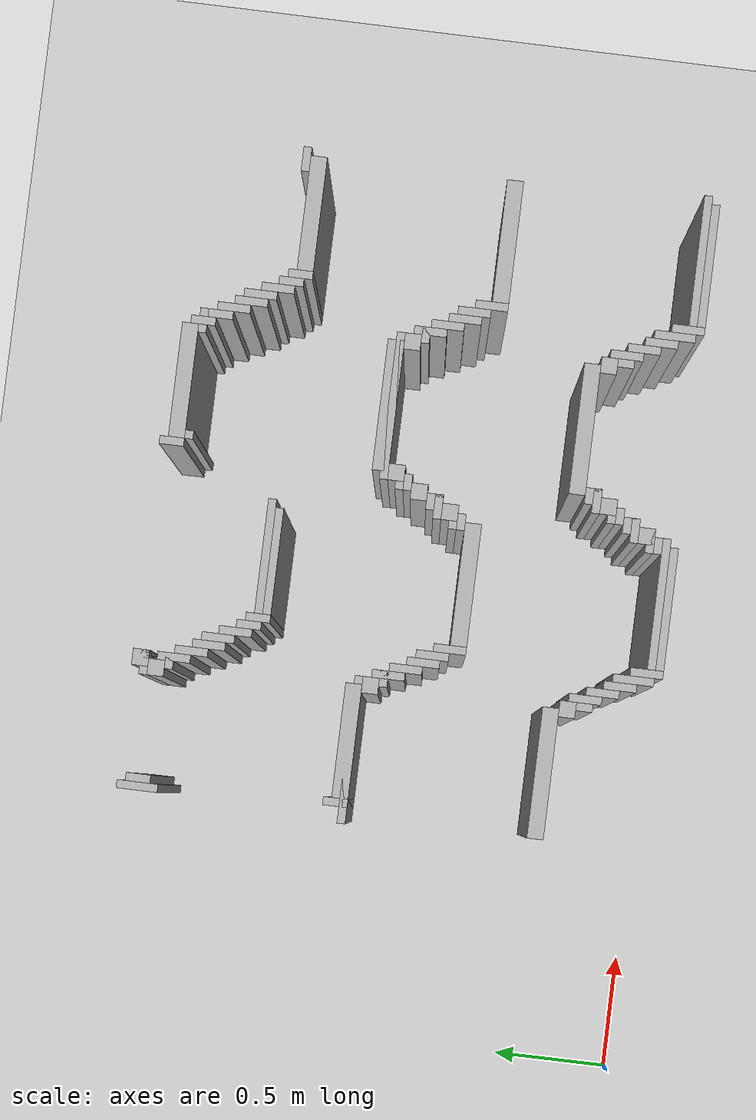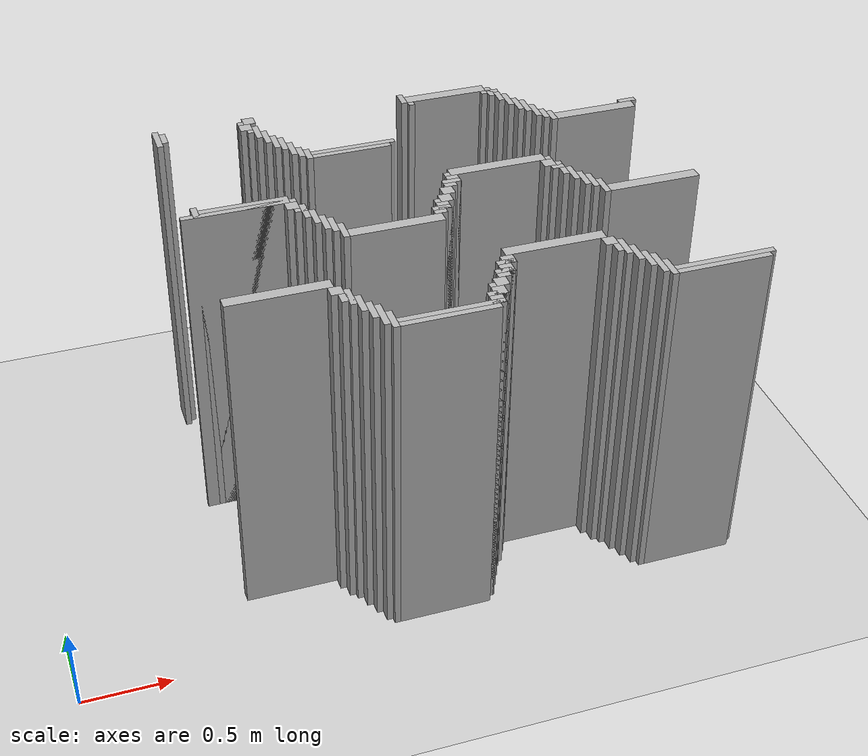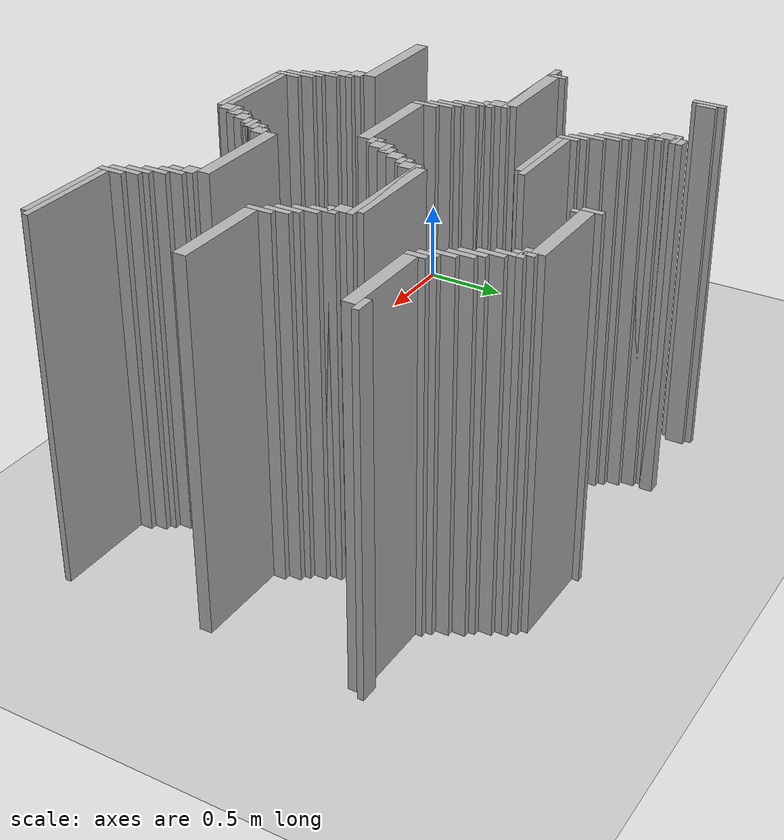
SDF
<sdf version="1.6">
 <world name="slam_world">
  <model name="ground_plane">
   <static>true</static>
   <link name="link">
    <collision name="collision">
     <geometry><plane><normal>0 0 1</normal><size>100 100</size></plane></geometry>
    </collision>
    <visual name="visual">
     <geometry><plane><normal>0 0 1</normal><size>100 100</size></plane></geometry>
     <material>
      <ambient>0.8 0.8 0.8 1</ambient>
      <diffuse>0.8 0.8 0.8 1</diffuse>
      <specular>0.8 0.8 0.8 1</specular>
     </material>
    </visual>
   </link>
  </model>
  <model name="wall_5118">
   <static>true</static>
   <pose>1.0266821345707655 2.1751740139211138 1.0 0 0 0</pose>
   <link name="link">
    <collision name="collision">
     <geometry><box><size>0.03480278422273782 0.17401392111368907 2.0</size></box></geometry>
    </collision>
    <visual name="visual">
     <geometry><box><size>0.03480278422273782 0.17401392111368907 2.0</size></box></geometry>
     <material><ambient>0.5 0.5 0.5 1</ambient><diffuse>0.7 0.7 0.7 1</diffuse></material>
    </visual>
   </link>
  </model>
  <model name="wall_5119">
   <static>true</static>
   <pose>1.5661252900232019 2.2273781902552203 1.0 0 0 0</pose>
   <link name="link">
    <collision name="collision">
     <geometry><box><size>0.06960556844547564 0.06960556844547564 2.0</size></box></geometry>
    </collision>
    <visual name="visual">
     <geometry><box><size>0.06960556844547564 0.06960556844547564 2.0</size></box></geometry>
     <material><ambient>0.5 0.5 0.5 1</ambient><diffuse>0.7 0.7 0.7 1</diffuse></material>
    </visual>
   </link>
  </model>
  <model name="wall_5120">
   <static>true</static>
   <pose>2.488399071925754 2.2099767981438516 1.0 0 0 0</pose>
   <link name="link">
    <collision name="collision">
     <geometry><box><size>0.03480278422273782 0.10440835266821345 2.0</size></box></geometry>
    </collision>
    <visual name="visual">
     <geometry><box><size>0.03480278422273782 0.10440835266821345 2.0</size></box></geometry>
     <material><ambient>0.5 0.5 0.5 1</ambient><diffuse>0.7 0.7 0.7 1</diffuse></material>
    </visual>
   </link>
  </model>
  <model name="wall_5134">
   <static>true</static>
   <pose>1.0614849187935034 2.1751740139211138 1.0 0 0 0</pose>
   <link name="link">
    <collision name="collision">
     <geometry><box><size>0.03480278422273782 0.10440835266821345 2.0</size></box></geometry>
    </collision>
    <visual name="visual">
     <geometry><box><size>0.03480278422273782 0.10440835266821345 2.0</size></box></geometry>
     <material><ambient>0.5 0.5 0.5 1</ambient><diffuse>0.7 0.7 0.7 1</diffuse></material>
    </visual>
   </link>
  </model>
  <model name="wall_5135">
   <static>true</static>
   <pose>1.548723897911833 2.2099767981438516 1.0 0 0 0</pose>
   <link name="link">
    <collision name="collision">
     <geometry><box><size>0.10440835266821345 0.03480278422273782 2.0</size></box></geometry>
    </collision>
    <visual name="visual">
     <geometry><box><size>0.10440835266821345 0.03480278422273782 2.0</size></box></geometry>
     <material><ambient>0.5 0.5 0.5 1</ambient><diffuse>0.7 0.7 0.7 1</diffuse></material>
    </visual>
   </link>
  </model>
  <model name="wall_5136">
   <static>true</static>
   <pose>2.7494199535962878 2.1925754060324825 1.0 0 0 0</pose>
   <link name="link">
    <collision name="collision">
     <geometry><box><size>0.4872389791183295 0.06960556844547564 2.0</size></box></geometry>
    </collision>
    <visual name="visual">
     <geometry><box><size>0.4872389791183295 0.06960556844547564 2.0</size></box></geometry>
     <material><ambient>0.5 0.5 0.5 1</ambient><diffuse>0.7 0.7 0.7 1</diffuse></material>
    </visual>
   </link>
  </model>
  <model name="wall_5149">
   <static>true</static>
   <pose>1.531322505800464 2.1577726218097446 1.0 0 0 0</pose>
   <link name="link">
    <collision name="collision">
     <geometry><box><size>0.06960556844547564 0.06960556844547564 2.0</size></box></geometry>
    </collision>
    <visual name="visual">
     <geometry><box><size>0.06960556844547564 0.06960556844547564 2.0</size></box></geometry>
     <material><ambient>0.5 0.5 0.5 1</ambient><diffuse>0.7 0.7 0.7 1</diffuse></material>
    </visual>
   </link>
  </model>
  <model name="wall_5150">
   <static>true</static>
   <pose>3.010440835266821 2.140371229698376 1.0 0 0 0</pose>
   <link name="link">
    <collision name="collision">
     <geometry><box><size>0.03480278422273782 0.10440835266821345 2.0</size></box></geometry>
    </collision>
    <visual name="visual">
     <geometry><box><size>0.03480278422273782 0.10440835266821345 2.0</size></box></geometry>
     <material><ambient>0.5 0.5 0.5 1</ambient><diffuse>0.7 0.7 0.7 1</diffuse></material>
    </visual>
   </link>
  </model>
  <model name="wall_5161">
   <static>true</static>
   <pose>1.5835266821345706 2.088167053364269 1.0 0 0 0</pose>
   <link name="link">
    <collision name="collision">
     <geometry><box><size>0.03480278422273782 0.13921113689095127 2.0</size></box></geometry>
    </collision>
    <visual name="visual">
     <geometry><box><size>0.03480278422273782 0.13921113689095127 2.0</size></box></geometry>
     <material><ambient>0.5 0.5 0.5 1</ambient><diffuse>0.7 0.7 0.7 1</diffuse></material>
    </visual>
   </link>
  </model>
  <model name="wall_5162">
   <static>true</static>
   <pose>2.523201856148492 2.140371229698376 1.0 0 0 0</pose>
   <link name="link">
    <collision name="collision">
     <geometry><box><size>0.03480278422273782 0.03480278422273782 2.0</size></box></geometry>
    </collision>
    <visual name="visual">
     <geometry><box><size>0.03480278422273782 0.03480278422273782 2.0</size></box></geometry>
     <material><ambient>0.5 0.5 0.5 1</ambient><diffuse>0.7 0.7 0.7 1</diffuse></material>
    </visual>
   </link>
  </model>
  <model name="wall_5163">
   <static>true</static>
   <pose>3.010440835266821 2.140371229698376 1.0 0 0 0</pose>
   <link name="link">
    <collision name="collision">
     <geometry><box><size>0.10440835266821345 0.03480278422273782 2.0</size></box></geometry>
    </collision>
    <visual name="visual">
     <geometry><box><size>0.10440835266821345 0.03480278422273782 2.0</size></box></geometry>
     <material><ambient>0.5 0.5 0.5 1</ambient><diffuse>0.7 0.7 0.7 1</diffuse></material>
    </visual>
   </link>
  </model>
  <model name="wall_5180">
   <static>true</static>
   <pose>1.5661252900232019 2.105568445475638 1.0 0 0 0</pose>
   <link name="link">
    <collision name="collision">
     <geometry><box><size>0.06960556844547564 0.03480278422273782 2.0</size></box></geometry>
    </collision>
    <visual name="visual">
     <geometry><box><size>0.06960556844547564 0.03480278422273782 2.0</size></box></geometry>
     <material><ambient>0.5 0.5 0.5 1</ambient><diffuse>0.7 0.7 0.7 1</diffuse></material>
    </visual>
   </link>
  </model>
  <model name="wall_5181">
   <static>true</static>
   <pose>3.045243619489559 2.0707656612529 1.0 0 0 0</pose>
   <link name="link">
    <collision name="collision">
     <geometry><box><size>0.03480278422273782 0.10440835266821345 2.0</size></box></geometry>
    </collision>
    <visual name="visual">
     <geometry><box><size>0.03480278422273782 0.10440835266821345 2.0</size></box></geometry>
     <material><ambient>0.5 0.5 0.5 1</ambient><diffuse>0.7 0.7 0.7 1</diffuse></material>
    </visual>
   </link>
  </model>
  <model name="wall_5195">
   <static>true</static>
   <pose>1.6183294663573085 2.0185614849187936 1.0 0 0 0</pose>
   <link name="link">
    <collision name="collision">
     <geometry><box><size>0.03480278422273782 0.13921113689095127 2.0</size></box></geometry>
    </collision>
    <visual name="visual">
     <geometry><box><size>0.03480278422273782 0.13921113689095127 2.0</size></box></geometry>
     <material><ambient>0.5 0.5 0.5 1</ambient><diffuse>0.7 0.7 0.7 1</diffuse></material>
    </visual>
   </link>
  </model>
  <model name="wall_5196">
   <static>true</static>
   <pose>3.0800464037122968 2.0185614849187936 1.0 0 0 0</pose>
   <link name="link">
    <collision name="collision">
     <geometry><box><size>0.03480278422273782 0.13921113689095127 2.0</size></box></geometry>
    </collision>
    <visual name="visual">
     <geometry><box><size>0.03480278422273782 0.13921113689095127 2.0</size></box></geometry>
     <material><ambient>0.5 0.5 0.5 1</ambient><diffuse>0.7 0.7 0.7 1</diffuse></material>
    </visual>
   </link>
  </model>
  <model name="wall_5210">
   <static>true</static>
   <pose>1.6531322505800463 1.948955916473318 1.0 0 0 0</pose>
   <link name="link">
    <collision name="collision">
     <geometry><box><size>0.03480278422273782 0.13921113689095127 2.0</size></box></geometry>
    </collision>
    <visual name="visual">
     <geometry><box><size>0.03480278422273782 0.13921113689095127 2.0</size></box></geometry>
     <material><ambient>0.5 0.5 0.5 1</ambient><diffuse>0.7 0.7 0.7 1</diffuse></material>
    </visual>
   </link>
  </model>
  <model name="wall_5211">
   <static>true</static>
   <pose>3.1148491879350346 1.948955916473318 1.0 0 0 0</pose>
   <link name="link">
    <collision name="collision">
     <geometry><box><size>0.03480278422273782 0.13921113689095127 2.0</size></box></geometry>
    </collision>
    <visual name="visual">
     <geometry><box><size>0.03480278422273782 0.13921113689095127 2.0</size></box></geometry>
     <material><ambient>0.5 0.5 0.5 1</ambient><diffuse>0.7 0.7 0.7 1</diffuse></material>
    </visual>
   </link>
  </model>
  <model name="wall_5225">
   <static>true</static>
   <pose>1.6879350348027842 1.91415313225058 1.0 0 0 0</pose>
   <link name="link">
    <collision name="collision">
     <geometry><box><size>0.03480278422273782 0.13921113689095127 2.0</size></box></geometry>
    </collision>
    <visual name="visual">
     <geometry><box><size>0.03480278422273782 0.13921113689095127 2.0</size></box></geometry>
     <material><ambient>0.5 0.5 0.5 1</ambient><diffuse>0.7 0.7 0.7 1</diffuse></material>
    </visual>
   </link>
  </model>
  <model name="wall_5226">
   <static>true</static>
   <pose>3.1496519721577725 1.91415313225058 1.0 0 0 0</pose>
   <link name="link">
    <collision name="collision">
     <geometry><box><size>0.03480278422273782 0.13921113689095127 2.0</size></box></geometry>
    </collision>
    <visual name="visual">
     <geometry><box><size>0.03480278422273782 0.13921113689095127 2.0</size></box></geometry>
     <material><ambient>0.5 0.5 0.5 1</ambient><diffuse>0.7 0.7 0.7 1</diffuse></material>
    </visual>
   </link>
  </model>
  <model name="wall_5250">
   <static>true</static>
   <pose>1.722737819025522 1.8445475638051043 1.0 0 0 0</pose>
   <link name="link">
    <collision name="collision">
     <geometry><box><size>0.03480278422273782 0.13921113689095127 2.0</size></box></geometry>
    </collision>
    <visual name="visual">
     <geometry><box><size>0.03480278422273782 0.13921113689095127 2.0</size></box></geometry>
     <material><ambient>0.5 0.5 0.5 1</ambient><diffuse>0.7 0.7 0.7 1</diffuse></material>
    </visual>
   </link>
  </model>
  <model name="wall_5251">
   <static>true</static>
   <pose>3.1844547563805103 1.8445475638051043 1.0 0 0 0</pose>
   <link name="link">
    <collision name="collision">
     <geometry><box><size>0.03480278422273782 0.13921113689095127 2.0</size></box></geometry>
    </collision>
    <visual name="visual">
     <geometry><box><size>0.03480278422273782 0.13921113689095127 2.0</size></box></geometry>
     <material><ambient>0.5 0.5 0.5 1</ambient><diffuse>0.7 0.7 0.7 1</diffuse></material>
    </visual>
   </link>
  </model>
  <model name="wall_5274">
   <static>true</static>
   <pose>1.75754060324826 1.7923433874709975 1.0 0 0 0</pose>
   <link name="link">
    <collision name="collision">
     <geometry><box><size>0.03480278422273782 0.10440835266821345 2.0</size></box></geometry>
    </collision>
    <visual name="visual">
     <geometry><box><size>0.03480278422273782 0.10440835266821345 2.0</size></box></geometry>
     <material><ambient>0.5 0.5 0.5 1</ambient><diffuse>0.7 0.7 0.7 1</diffuse></material>
    </visual>
   </link>
  </model>
  <model name="wall_5275">
   <static>true</static>
   <pose>3.219257540603248 1.7923433874709975 1.0 0 0 0</pose>
   <link name="link">
    <collision name="collision">
     <geometry><box><size>0.03480278422273782 0.10440835266821345 2.0</size></box></geometry>
    </collision>
    <visual name="visual">
     <geometry><box><size>0.03480278422273782 0.10440835266821345 2.0</size></box></geometry>
     <material><ambient>0.5 0.5 0.5 1</ambient><diffuse>0.7 0.7 0.7 1</diffuse></material>
    </visual>
   </link>
  </model>
  <model name="wall_5289">
   <static>true</static>
   <pose>1.7923433874709975 1.75754060324826 1.0 0 0 0</pose>
   <link name="link">
    <collision name="collision">
     <geometry><box><size>0.03480278422273782 0.10440835266821345 2.0</size></box></geometry>
    </collision>
    <visual name="visual">
     <geometry><box><size>0.03480278422273782 0.10440835266821345 2.0</size></box></geometry>
     <material><ambient>0.5 0.5 0.5 1</ambient><diffuse>0.7 0.7 0.7 1</diffuse></material>
    </visual>
   </link>
  </model>
  <model name="wall_5290">
   <static>true</static>
   <pose>3.254060324825986 1.75754060324826 1.0 0 0 0</pose>
   <link name="link">
    <collision name="collision">
     <geometry><box><size>0.03480278422273782 0.10440835266821345 2.0</size></box></geometry>
    </collision>
    <visual name="visual">
     <geometry><box><size>0.03480278422273782 0.10440835266821345 2.0</size></box></geometry>
     <material><ambient>0.5 0.5 0.5 1</ambient><diffuse>0.7 0.7 0.7 1</diffuse></material>
    </visual>
   </link>
  </model>
  <model name="wall_5291">
   <static>true</static>
   <pose>3.741299303944315 1.7923433874709975 1.0 0 0 0</pose>
   <link name="link">
    <collision name="collision">
     <geometry><box><size>0.10440835266821345 0.03480278422273782 2.0</size></box></geometry>
    </collision>
    <visual name="visual">
     <geometry><box><size>0.10440835266821345 0.03480278422273782 2.0</size></box></geometry>
     <material><ambient>0.5 0.5 0.5 1</ambient><diffuse>0.7 0.7 0.7 1</diffuse></material>
    </visual>
   </link>
  </model>
  <model name="wall_5303">
   <static>true</static>
   <pose>2.053364269141531 1.75754060324826 1.0 0 0 0</pose>
   <link name="link">
    <collision name="collision">
     <geometry><box><size>0.4872389791183295 0.03480278422273782 2.0</size></box></geometry>
    </collision>
    <visual name="visual">
     <geometry><box><size>0.4872389791183295 0.03480278422273782 2.0</size></box></geometry>
     <material><ambient>0.5 0.5 0.5 1</ambient><diffuse>0.7 0.7 0.7 1</diffuse></material>
    </visual>
   </link>
  </model>
  <model name="wall_5304">
   <static>true</static>
   <pose>3.51508120649652 1.740139211136891 1.0 0 0 0</pose>
   <link name="link">
    <collision name="collision">
     <geometry><box><size>0.4872389791183295 0.06960556844547564 2.0</size></box></geometry>
    </collision>
    <visual name="visual">
     <geometry><box><size>0.4872389791183295 0.06960556844547564 2.0</size></box></geometry>
     <material><ambient>0.5 0.5 0.5 1</ambient><diffuse>0.7 0.7 0.7 1</diffuse></material>
    </visual>
   </link>
  </model>
  <model name="wall_5316">
   <static>true</static>
   <pose>2.0359628770301623 1.722737819025522 1.0 0 0 0</pose>
   <link name="link">
    <collision name="collision">
     <geometry><box><size>0.4524361948955916 0.03480278422273782 2.0</size></box></geometry>
    </collision>
    <visual name="visual">
     <geometry><box><size>0.4524361948955916 0.03480278422273782 2.0</size></box></geometry>
     <material><ambient>0.5 0.5 0.5 1</ambient><diffuse>0.7 0.7 0.7 1</diffuse></material>
    </visual>
   </link>
  </model>
  <model name="wall_5421">
   <static>true</static>
   <pose>1.0614849187935034 1.339907192575406 1.0 0 0 0</pose>
   <link name="link">
    <collision name="collision">
     <geometry><box><size>0.03480278422273782 0.10440835266821345 2.0</size></box></geometry>
    </collision>
    <visual name="visual">
     <geometry><box><size>0.03480278422273782 0.10440835266821345 2.0</size></box></geometry>
     <material><ambient>0.5 0.5 0.5 1</ambient><diffuse>0.7 0.7 0.7 1</diffuse></material>
    </visual>
   </link>
  </model>
  <model name="wall_5432">
   <static>true</static>
   <pose>1.322505800464037 1.322505800464037 1.0 0 0 0</pose>
   <link name="link">
    <collision name="collision">
     <geometry><box><size>0.4872389791183295 0.06960556844547564 2.0</size></box></geometry>
    </collision>
    <visual name="visual">
     <geometry><box><size>0.4872389791183295 0.06960556844547564 2.0</size></box></geometry>
     <material><ambient>0.5 0.5 0.5 1</ambient><diffuse>0.7 0.7 0.7 1</diffuse></material>
    </visual>
   </link>
  </model>
  <model name="wall_5433">
   <static>true</static>
   <pose>2.7494199535962878 1.322505800464037 1.0 0 0 0</pose>
   <link name="link">
    <collision name="collision">
     <geometry><box><size>0.5568445475638051 0.06960556844547564 2.0</size></box></geometry>
    </collision>
    <visual name="visual">
     <geometry><box><size>0.5568445475638051 0.06960556844547564 2.0</size></box></geometry>
     <material><ambient>0.5 0.5 0.5 1</ambient><diffuse>0.7 0.7 0.7 1</diffuse></material>
    </visual>
   </link>
  </model>
  <model name="wall_5444">
   <static>true</static>
   <pose>1.2877030162412992 1.3051044083526682 1.0 0 0 0</pose>
   <link name="link">
    <collision name="collision">
     <geometry><box><size>0.6264501160092807 0.03480278422273782 2.0</size></box></geometry>
    </collision>
    <visual name="visual">
     <geometry><box><size>0.6264501160092807 0.03480278422273782 2.0</size></box></geometry>
     <material><ambient>0.5 0.5 0.5 1</ambient><diffuse>0.7 0.7 0.7 1</diffuse></material>
    </visual>
   </link>
  </model>
  <model name="wall_5445">
   <static>true</static>
   <pose>2.7494199535962878 1.3051044083526682 1.0 0 0 0</pose>
   <link name="link">
    <collision name="collision">
     <geometry><box><size>0.6264501160092807 0.03480278422273782 2.0</size></box></geometry>
    </collision>
    <visual name="visual">
     <geometry><box><size>0.6264501160092807 0.03480278422273782 2.0</size></box></geometry>
     <material><ambient>0.5 0.5 0.5 1</ambient><diffuse>0.7 0.7 0.7 1</diffuse></material>
    </visual>
   </link>
  </model>
  <model name="wall_5457">
   <static>true</static>
   <pose>1.5661252900232019 1.2529002320185614 1.0 0 0 0</pose>
   <link name="link">
    <collision name="collision">
     <geometry><box><size>0.06960556844547564 0.06960556844547564 2.0</size></box></geometry>
    </collision>
    <visual name="visual">
     <geometry><box><size>0.06960556844547564 0.06960556844547564 2.0</size></box></geometry>
     <material><ambient>0.5 0.5 0.5 1</ambient><diffuse>0.7 0.7 0.7 1</diffuse></material>
    </visual>
   </link>
  </model>
  <model name="wall_5458">
   <static>true</static>
   <pose>2.470997679814385 1.2529002320185614 1.0 0 0 0</pose>
   <link name="link">
    <collision name="collision">
     <geometry><box><size>0.06960556844547564 0.06960556844547564 2.0</size></box></geometry>
    </collision>
    <visual name="visual">
     <geometry><box><size>0.06960556844547564 0.06960556844547564 2.0</size></box></geometry>
     <material><ambient>0.5 0.5 0.5 1</ambient><diffuse>0.7 0.7 0.7 1</diffuse></material>
    </visual>
   </link>
  </model>
  <model name="wall_5459">
   <static>true</static>
   <pose>3.02784222737819 1.2529002320185614 1.0 0 0 0</pose>
   <link name="link">
    <collision name="collision">
     <geometry><box><size>0.06960556844547564 0.06960556844547564 2.0</size></box></geometry>
    </collision>
    <visual name="visual">
     <geometry><box><size>0.06960556844547564 0.06960556844547564 2.0</size></box></geometry>
     <material><ambient>0.5 0.5 0.5 1</ambient><diffuse>0.7 0.7 0.7 1</diffuse></material>
    </visual>
   </link>
  </model>
  <model name="wall_5472">
   <static>true</static>
   <pose>1.6183294663573085 1.1832946635730859 1.0 0 0 0</pose>
   <link name="link">
    <collision name="collision">
     <geometry><box><size>0.03480278422273782 0.13921113689095127 2.0</size></box></geometry>
    </collision>
    <visual name="visual">
     <geometry><box><size>0.03480278422273782 0.13921113689095127 2.0</size></box></geometry>
     <material><ambient>0.5 0.5 0.5 1</ambient><diffuse>0.7 0.7 0.7 1</diffuse></material>
    </visual>
   </link>
  </model>
  <model name="wall_5473">
   <static>true</static>
   <pose>2.453596287703016 1.2354988399071924 1.0 0 0 0</pose>
   <link name="link">
    <collision name="collision">
     <geometry><box><size>0.10440835266821345 0.03480278422273782 2.0</size></box></geometry>
    </collision>
    <visual name="visual">
     <geometry><box><size>0.10440835266821345 0.03480278422273782 2.0</size></box></geometry>
     <material><ambient>0.5 0.5 0.5 1</ambient><diffuse>0.7 0.7 0.7 1</diffuse></material>
    </visual>
   </link>
  </model>
  <model name="wall_5474">
   <static>true</static>
   <pose>3.0800464037122968 1.1832946635730859 1.0 0 0 0</pose>
   <link name="link">
    <collision name="collision">
     <geometry><box><size>0.03480278422273782 0.13921113689095127 2.0</size></box></geometry>
    </collision>
    <visual name="visual">
     <geometry><box><size>0.03480278422273782 0.13921113689095127 2.0</size></box></geometry>
     <material><ambient>0.5 0.5 0.5 1</ambient><diffuse>0.7 0.7 0.7 1</diffuse></material>
    </visual>
   </link>
  </model>
  <model name="wall_5486">
   <static>true</static>
   <pose>1.6009280742459395 1.2006960556844548 1.0 0 0 0</pose>
   <link name="link">
    <collision name="collision">
     <geometry><box><size>0.06960556844547564 0.03480278422273782 2.0</size></box></geometry>
    </collision>
    <visual name="visual">
     <geometry><box><size>0.06960556844547564 0.03480278422273782 2.0</size></box></geometry>
     <material><ambient>0.5 0.5 0.5 1</ambient><diffuse>0.7 0.7 0.7 1</diffuse></material>
    </visual>
   </link>
  </model>
  <model name="wall_5487">
   <static>true</static>
   <pose>2.436194895591647 1.2006960556844548 1.0 0 0 0</pose>
   <link name="link">
    <collision name="collision">
     <geometry><box><size>0.06960556844547564 0.03480278422273782 2.0</size></box></geometry>
    </collision>
    <visual name="visual">
     <geometry><box><size>0.06960556844547564 0.03480278422273782 2.0</size></box></geometry>
     <material><ambient>0.5 0.5 0.5 1</ambient><diffuse>0.7 0.7 0.7 1</diffuse></material>
    </visual>
   </link>
  </model>
  <model name="wall_5488">
   <static>true</static>
   <pose>3.062645011600928 1.2006960556844548 1.0 0 0 0</pose>
   <link name="link">
    <collision name="collision">
     <geometry><box><size>0.06960556844547564 0.03480278422273782 2.0</size></box></geometry>
    </collision>
    <visual name="visual">
     <geometry><box><size>0.06960556844547564 0.03480278422273782 2.0</size></box></geometry>
     <material><ambient>0.5 0.5 0.5 1</ambient><diffuse>0.7 0.7 0.7 1</diffuse></material>
    </visual>
   </link>
  </model>
  <model name="wall_5499">
   <static>true</static>
   <pose>1.6531322505800463 1.1136890951276102 1.0 0 0 0</pose>
   <link name="link">
    <collision name="collision">
     <geometry><box><size>0.03480278422273782 0.13921113689095127 2.0</size></box></geometry>
    </collision>
    <visual name="visual">
     <geometry><box><size>0.03480278422273782 0.13921113689095127 2.0</size></box></geometry>
     <material><ambient>0.5 0.5 0.5 1</ambient><diffuse>0.7 0.7 0.7 1</diffuse></material>
    </visual>
   </link>
  </model>
  <model name="wall_5500">
   <static>true</static>
   <pose>2.4013921113689096 1.148491879350348 1.0 0 0 0</pose>
   <link name="link">
    <collision name="collision">
     <geometry><box><size>0.06960556844547564 0.06960556844547564 2.0</size></box></geometry>
    </collision>
    <visual name="visual">
     <geometry><box><size>0.06960556844547564 0.06960556844547564 2.0</size></box></geometry>
     <material><ambient>0.5 0.5 0.5 1</ambient><diffuse>0.7 0.7 0.7 1</diffuse></material>
    </visual>
   </link>
  </model>
  <model name="wall_5501">
   <static>true</static>
   <pose>3.1148491879350346 1.1136890951276102 1.0 0 0 0</pose>
   <link name="link">
    <collision name="collision">
     <geometry><box><size>0.03480278422273782 0.13921113689095127 2.0</size></box></geometry>
    </collision>
    <visual name="visual">
     <geometry><box><size>0.03480278422273782 0.13921113689095127 2.0</size></box></geometry>
     <material><ambient>0.5 0.5 0.5 1</ambient><diffuse>0.7 0.7 0.7 1</diffuse></material>
    </visual>
   </link>
  </model>
  <model name="wall_5514">
   <static>true</static>
   <pose>1.6879350348027842 1.0440835266821344 1.0 0 0 0</pose>
   <link name="link">
    <collision name="collision">
     <geometry><box><size>0.03480278422273782 0.13921113689095127 2.0</size></box></geometry>
    </collision>
    <visual name="visual">
     <geometry><box><size>0.03480278422273782 0.13921113689095127 2.0</size></box></geometry>
     <material><ambient>0.5 0.5 0.5 1</ambient><diffuse>0.7 0.7 0.7 1</diffuse></material>
    </visual>
   </link>
  </model>
  <model name="wall_5515">
   <static>true</static>
   <pose>2.3665893271461718 1.0788863109048723 1.0 0 0 0</pose>
   <link name="link">
    <collision name="collision">
     <geometry><box><size>0.06960556844547564 0.06960556844547564 2.0</size></box></geometry>
    </collision>
    <visual name="visual">
     <geometry><box><size>0.06960556844547564 0.06960556844547564 2.0</size></box></geometry>
     <material><ambient>0.5 0.5 0.5 1</ambient><diffuse>0.7 0.7 0.7 1</diffuse></material>
    </visual>
   </link>
  </model>
  <model name="wall_5516">
   <static>true</static>
   <pose>3.1496519721577725 1.0440835266821344 1.0 0 0 0</pose>
   <link name="link">
    <collision name="collision">
     <geometry><box><size>0.03480278422273782 0.13921113689095127 2.0</size></box></geometry>
    </collision>
    <visual name="visual">
     <geometry><box><size>0.03480278422273782 0.13921113689095127 2.0</size></box></geometry>
     <material><ambient>0.5 0.5 0.5 1</ambient><diffuse>0.7 0.7 0.7 1</diffuse></material>
    </visual>
   </link>
  </model>
  <model name="wall_5529">
   <static>true</static>
   <pose>1.722737819025522 1.0092807424593968 1.0 0 0 0</pose>
   <link name="link">
    <collision name="collision">
     <geometry><box><size>0.03480278422273782 0.13921113689095127 2.0</size></box></geometry>
    </collision>
    <visual name="visual">
     <geometry><box><size>0.03480278422273782 0.13921113689095127 2.0</size></box></geometry>
     <material><ambient>0.5 0.5 0.5 1</ambient><diffuse>0.7 0.7 0.7 1</diffuse></material>
    </visual>
   </link>
  </model>
  <model name="wall_5530">
   <static>true</static>
   <pose>2.3491879350348026 1.0614849187935034 1.0 0 0 0</pose>
   <link name="link">
    <collision name="collision">
     <geometry><box><size>0.10440835266821345 0.03480278422273782 2.0</size></box></geometry>
    </collision>
    <visual name="visual">
     <geometry><box><size>0.10440835266821345 0.03480278422273782 2.0</size></box></geometry>
     <material><ambient>0.5 0.5 0.5 1</ambient><diffuse>0.7 0.7 0.7 1</diffuse></material>
    </visual>
   </link>
  </model>
  <model name="wall_5531">
   <static>true</static>
   <pose>3.1844547563805103 1.0092807424593968 1.0 0 0 0</pose>
   <link name="link">
    <collision name="collision">
     <geometry><box><size>0.03480278422273782 0.13921113689095127 2.0</size></box></geometry>
    </collision>
    <visual name="visual">
     <geometry><box><size>0.03480278422273782 0.13921113689095127 2.0</size></box></geometry>
     <material><ambient>0.5 0.5 0.5 1</ambient><diffuse>0.7 0.7 0.7 1</diffuse></material>
    </visual>
   </link>
  </model>
  <model name="wall_5543">
   <static>true</static>
   <pose>2.331786542923434 1.0092807424593968 1.0 0 0 0</pose>
   <link name="link">
    <collision name="collision">
     <geometry><box><size>0.06960556844547564 0.06960556844547564 2.0</size></box></geometry>
    </collision>
    <visual name="visual">
     <geometry><box><size>0.06960556844547564 0.06960556844547564 2.0</size></box></geometry>
     <material><ambient>0.5 0.5 0.5 1</ambient><diffuse>0.7 0.7 0.7 1</diffuse></material>
    </visual>
   </link>
  </model>
  <model name="wall_5553">
   <static>true</static>
   <pose>1.75754060324826 0.9396751740139211 1.0 0 0 0</pose>
   <link name="link">
    <collision name="collision">
     <geometry><box><size>0.03480278422273782 0.13921113689095127 2.0</size></box></geometry>
    </collision>
    <visual name="visual">
     <geometry><box><size>0.03480278422273782 0.13921113689095127 2.0</size></box></geometry>
     <material><ambient>0.5 0.5 0.5 1</ambient><diffuse>0.7 0.7 0.7 1</diffuse></material>
    </visual>
   </link>
  </model>
  <model name="wall_5554">
   <static>true</static>
   <pose>2.3143851508120648 0.9918793503480278 1.0 0 0 0</pose>
   <link name="link">
    <collision name="collision">
     <geometry><box><size>0.10440835266821345 0.03480278422273782 2.0</size></box></geometry>
    </collision>
    <visual name="visual">
     <geometry><box><size>0.10440835266821345 0.03480278422273782 2.0</size></box></geometry>
     <material><ambient>0.5 0.5 0.5 1</ambient><diffuse>0.7 0.7 0.7 1</diffuse></material>
    </visual>
   </link>
  </model>
  <model name="wall_5555">
   <static>true</static>
   <pose>3.219257540603248 0.9396751740139211 1.0 0 0 0</pose>
   <link name="link">
    <collision name="collision">
     <geometry><box><size>0.03480278422273782 0.13921113689095127 2.0</size></box></geometry>
    </collision>
    <visual name="visual">
     <geometry><box><size>0.03480278422273782 0.13921113689095127 2.0</size></box></geometry>
     <material><ambient>0.5 0.5 0.5 1</ambient><diffuse>0.7 0.7 0.7 1</diffuse></material>
    </visual>
   </link>
  </model>
  <model name="wall_5567">
   <static>true</static>
   <pose>2.296983758700696 0.95707656612529 1.0 0 0 0</pose>
   <link name="link">
    <collision name="collision">
     <geometry><box><size>0.06960556844547564 0.03480278422273782 2.0</size></box></geometry>
    </collision>
    <visual name="visual">
     <geometry><box><size>0.06960556844547564 0.03480278422273782 2.0</size></box></geometry>
     <material><ambient>0.5 0.5 0.5 1</ambient><diffuse>0.7 0.7 0.7 1</diffuse></material>
    </visual>
   </link>
  </model>
  <model name="wall_5577">
   <static>true</static>
   <pose>2.0359628770301623 0.9048723897911832 1.0 0 0 0</pose>
   <link name="link">
    <collision name="collision">
     <geometry><box><size>0.5220417633410672 0.06960556844547564 2.0</size></box></geometry>
    </collision>
    <visual name="visual">
     <geometry><box><size>0.5220417633410672 0.06960556844547564 2.0</size></box></geometry>
     <material><ambient>0.5 0.5 0.5 1</ambient><diffuse>0.7 0.7 0.7 1</diffuse></material>
    </visual>
   </link>
  </model>
  <model name="wall_5578">
   <static>true</static>
   <pose>3.4976798143851506 0.9048723897911832 1.0 0 0 0</pose>
   <link name="link">
    <collision name="collision">
     <geometry><box><size>0.5220417633410672 0.06960556844547564 2.0</size></box></geometry>
    </collision>
    <visual name="visual">
     <geometry><box><size>0.5220417633410672 0.06960556844547564 2.0</size></box></geometry>
     <material><ambient>0.5 0.5 0.5 1</ambient><diffuse>0.7 0.7 0.7 1</diffuse></material>
    </visual>
   </link>
  </model>
  <model name="wall_5650">
   <static>true</static>
   <pose>1.2877030162412992 0.4872389791183295 1.0 0 0 0</pose>
   <link name="link">
    <collision name="collision">
     <geometry><box><size>0.5568445475638051 0.06960556844547564 2.0</size></box></geometry>
    </collision>
    <visual name="visual">
     <geometry><box><size>0.5568445475638051 0.06960556844547564 2.0</size></box></geometry>
     <material><ambient>0.5 0.5 0.5 1</ambient><diffuse>0.7 0.7 0.7 1</diffuse></material>
    </visual>
   </link>
  </model>
  <model name="wall_5651">
   <static>true</static>
   <pose>2.7494199535962878 0.4872389791183295 1.0 0 0 0</pose>
   <link name="link">
    <collision name="collision">
     <geometry><box><size>0.5568445475638051 0.06960556844547564 2.0</size></box></geometry>
    </collision>
    <visual name="visual">
     <geometry><box><size>0.5568445475638051 0.06960556844547564 2.0</size></box></geometry>
     <material><ambient>0.5 0.5 0.5 1</ambient><diffuse>0.7 0.7 0.7 1</diffuse></material>
    </visual>
   </link>
  </model>
  <model name="wall_5662">
   <static>true</static>
   <pose>1.5661252900232019 0.4176334106728538 1.0 0 0 0</pose>
   <link name="link">
    <collision name="collision">
     <geometry><box><size>0.06960556844547564 0.06960556844547564 2.0</size></box></geometry>
    </collision>
    <visual name="visual">
     <geometry><box><size>0.06960556844547564 0.06960556844547564 2.0</size></box></geometry>
     <material><ambient>0.5 0.5 0.5 1</ambient><diffuse>0.7 0.7 0.7 1</diffuse></material>
    </visual>
   </link>
  </model>
  <model name="wall_5663">
   <static>true</static>
   <pose>2.470997679814385 0.4176334106728538 1.0 0 0 0</pose>
   <link name="link">
    <collision name="collision">
     <geometry><box><size>0.06960556844547564 0.06960556844547564 2.0</size></box></geometry>
    </collision>
    <visual name="visual">
     <geometry><box><size>0.06960556844547564 0.06960556844547564 2.0</size></box></geometry>
     <material><ambient>0.5 0.5 0.5 1</ambient><diffuse>0.7 0.7 0.7 1</diffuse></material>
    </visual>
   </link>
  </model>
  <model name="wall_5664">
   <static>true</static>
   <pose>3.02784222737819 0.4176334106728538 1.0 0 0 0</pose>
   <link name="link">
    <collision name="collision">
     <geometry><box><size>0.06960556844547564 0.06960556844547564 2.0</size></box></geometry>
    </collision>
    <visual name="visual">
     <geometry><box><size>0.06960556844547564 0.06960556844547564 2.0</size></box></geometry>
     <material><ambient>0.5 0.5 0.5 1</ambient><diffuse>0.7 0.7 0.7 1</diffuse></material>
    </visual>
   </link>
  </model>
  <model name="wall_5682">
   <static>true</static>
   <pose>1.6183294663573085 0.34802784222737815 1.0 0 0 0</pose>
   <link name="link">
    <collision name="collision">
     <geometry><box><size>0.03480278422273782 0.13921113689095127 2.0</size></box></geometry>
    </collision>
    <visual name="visual">
     <geometry><box><size>0.03480278422273782 0.13921113689095127 2.0</size></box></geometry>
     <material><ambient>0.5 0.5 0.5 1</ambient><diffuse>0.7 0.7 0.7 1</diffuse></material>
    </visual>
   </link>
  </model>
  <model name="wall_5683">
   <static>true</static>
   <pose>2.453596287703016 0.4002320185614849 1.0 0 0 0</pose>
   <link name="link">
    <collision name="collision">
     <geometry><box><size>0.10440835266821345 0.03480278422273782 2.0</size></box></geometry>
    </collision>
    <visual name="visual">
     <geometry><box><size>0.10440835266821345 0.03480278422273782 2.0</size></box></geometry>
     <material><ambient>0.5 0.5 0.5 1</ambient><diffuse>0.7 0.7 0.7 1</diffuse></material>
    </visual>
   </link>
  </model>
  <model name="wall_5684">
   <static>true</static>
   <pose>3.0800464037122968 0.34802784222737815 1.0 0 0 0</pose>
   <link name="link">
    <collision name="collision">
     <geometry><box><size>0.03480278422273782 0.13921113689095127 2.0</size></box></geometry>
    </collision>
    <visual name="visual">
     <geometry><box><size>0.03480278422273782 0.13921113689095127 2.0</size></box></geometry>
     <material><ambient>0.5 0.5 0.5 1</ambient><diffuse>0.7 0.7 0.7 1</diffuse></material>
    </visual>
   </link>
  </model>
  <model name="wall_5702">
   <static>true</static>
   <pose>1.6009280742459395 0.34802784222737815 1.0 0 0 0</pose>
   <link name="link">
    <collision name="collision">
     <geometry><box><size>0.06960556844547564 0.06960556844547564 2.0</size></box></geometry>
    </collision>
    <visual name="visual">
     <geometry><box><size>0.06960556844547564 0.06960556844547564 2.0</size></box></geometry>
     <material><ambient>0.5 0.5 0.5 1</ambient><diffuse>0.7 0.7 0.7 1</diffuse></material>
    </visual>
   </link>
  </model>
  <model name="wall_5703">
   <static>true</static>
   <pose>2.436194895591647 0.34802784222737815 1.0 0 0 0</pose>
   <link name="link">
    <collision name="collision">
     <geometry><box><size>0.06960556844547564 0.06960556844547564 2.0</size></box></geometry>
    </collision>
    <visual name="visual">
     <geometry><box><size>0.06960556844547564 0.06960556844547564 2.0</size></box></geometry>
     <material><ambient>0.5 0.5 0.5 1</ambient><diffuse>0.7 0.7 0.7 1</diffuse></material>
    </visual>
   </link>
  </model>
  <model name="wall_5704">
   <static>true</static>
   <pose>3.062645011600928 0.34802784222737815 1.0 0 0 0</pose>
   <link name="link">
    <collision name="collision">
     <geometry><box><size>0.06960556844547564 0.06960556844547564 2.0</size></box></geometry>
    </collision>
    <visual name="visual">
     <geometry><box><size>0.06960556844547564 0.06960556844547564 2.0</size></box></geometry>
     <material><ambient>0.5 0.5 0.5 1</ambient><diffuse>0.7 0.7 0.7 1</diffuse></material>
    </visual>
   </link>
  </model>
  <model name="wall_5722">
   <static>true</static>
   <pose>1.6531322505800463 0.27842227378190254 1.0 0 0 0</pose>
   <link name="link">
    <collision name="collision">
     <geometry><box><size>0.03480278422273782 0.13921113689095127 2.0</size></box></geometry>
    </collision>
    <visual name="visual">
     <geometry><box><size>0.03480278422273782 0.13921113689095127 2.0</size></box></geometry>
     <material><ambient>0.5 0.5 0.5 1</ambient><diffuse>0.7 0.7 0.7 1</diffuse></material>
    </visual>
   </link>
  </model>
  <model name="wall_5723">
   <static>true</static>
   <pose>2.4187935034802783 0.3306264501160093 1.0 0 0 0</pose>
   <link name="link">
    <collision name="collision">
     <geometry><box><size>0.10440835266821345 0.03480278422273782 2.0</size></box></geometry>
    </collision>
    <visual name="visual">
     <geometry><box><size>0.10440835266821345 0.03480278422273782 2.0</size></box></geometry>
     <material><ambient>0.5 0.5 0.5 1</ambient><diffuse>0.7 0.7 0.7 1</diffuse></material>
    </visual>
   </link>
  </model>
  <model name="wall_5724">
   <static>true</static>
   <pose>3.1148491879350346 0.27842227378190254 1.0 0 0 0</pose>
   <link name="link">
    <collision name="collision">
     <geometry><box><size>0.03480278422273782 0.13921113689095127 2.0</size></box></geometry>
    </collision>
    <visual name="visual">
     <geometry><box><size>0.03480278422273782 0.13921113689095127 2.0</size></box></geometry>
     <material><ambient>0.5 0.5 0.5 1</ambient><diffuse>0.7 0.7 0.7 1</diffuse></material>
    </visual>
   </link>
  </model>
  <model name="wall_5741">
   <static>true</static>
   <pose>2.4013921113689096 0.29582366589327147 1.0 0 0 0</pose>
   <link name="link">
    <collision name="collision">
     <geometry><box><size>0.06960556844547564 0.03480278422273782 2.0</size></box></geometry>
    </collision>
    <visual name="visual">
     <geometry><box><size>0.06960556844547564 0.03480278422273782 2.0</size></box></geometry>
     <material><ambient>0.5 0.5 0.5 1</ambient><diffuse>0.7 0.7 0.7 1</diffuse></material>
    </visual>
   </link>
  </model>
  <model name="wall_5752">
   <static>true</static>
   <pose>1.6879350348027842 0.2088167053364269 1.0 0 0 0</pose>
   <link name="link">
    <collision name="collision">
     <geometry><box><size>0.03480278422273782 0.13921113689095127 2.0</size></box></geometry>
    </collision>
    <visual name="visual">
     <geometry><box><size>0.03480278422273782 0.13921113689095127 2.0</size></box></geometry>
     <material><ambient>0.5 0.5 0.5 1</ambient><diffuse>0.7 0.7 0.7 1</diffuse></material>
    </visual>
   </link>
  </model>
  <model name="wall_5753">
   <static>true</static>
   <pose>2.3665893271461718 0.24361948955916474 1.0 0 0 0</pose>
   <link name="link">
    <collision name="collision">
     <geometry><box><size>0.06960556844547564 0.06960556844547564 2.0</size></box></geometry>
    </collision>
    <visual name="visual">
     <geometry><box><size>0.06960556844547564 0.06960556844547564 2.0</size></box></geometry>
     <material><ambient>0.5 0.5 0.5 1</ambient><diffuse>0.7 0.7 0.7 1</diffuse></material>
    </visual>
   </link>
  </model>
  <model name="wall_5754">
   <static>true</static>
   <pose>3.1496519721577725 0.2088167053364269 1.0 0 0 0</pose>
   <link name="link">
    <collision name="collision">
     <geometry><box><size>0.03480278422273782 0.13921113689095127 2.0</size></box></geometry>
    </collision>
    <visual name="visual">
     <geometry><box><size>0.03480278422273782 0.13921113689095127 2.0</size></box></geometry>
     <material><ambient>0.5 0.5 0.5 1</ambient><diffuse>0.7 0.7 0.7 1</diffuse></material>
    </visual>
   </link>
  </model>
  <model name="wall_5772">
   <static>true</static>
   <pose>1.722737819025522 0.15661252900232017 1.0 0 0 0</pose>
   <link name="link">
    <collision name="collision">
     <geometry><box><size>0.03480278422273782 0.17401392111368907 2.0</size></box></geometry>
    </collision>
    <visual name="visual">
     <geometry><box><size>0.03480278422273782 0.17401392111368907 2.0</size></box></geometry>
     <material><ambient>0.5 0.5 0.5 1</ambient><diffuse>0.7 0.7 0.7 1</diffuse></material>
    </visual>
   </link>
  </model>
  <model name="wall_5773">
   <static>true</static>
   <pose>2.3491879350348026 0.2262180974477958 1.0 0 0 0</pose>
   <link name="link">
    <collision name="collision">
     <geometry><box><size>0.10440835266821345 0.03480278422273782 2.0</size></box></geometry>
    </collision>
    <visual name="visual">
     <geometry><box><size>0.10440835266821345 0.03480278422273782 2.0</size></box></geometry>
     <material><ambient>0.5 0.5 0.5 1</ambient><diffuse>0.7 0.7 0.7 1</diffuse></material>
    </visual>
   </link>
  </model>
  <model name="wall_5774">
   <static>true</static>
   <pose>3.1844547563805103 0.15661252900232017 1.0 0 0 0</pose>
   <link name="link">
    <collision name="collision">
     <geometry><box><size>0.03480278422273782 0.17401392111368907 2.0</size></box></geometry>
    </collision>
    <visual name="visual">
     <geometry><box><size>0.03480278422273782 0.17401392111368907 2.0</size></box></geometry>
     <material><ambient>0.5 0.5 0.5 1</ambient><diffuse>0.7 0.7 0.7 1</diffuse></material>
    </visual>
   </link>
  </model>
  <model name="wall_5791">
   <static>true</static>
   <pose>2.331786542923434 0.17401392111368907 1.0 0 0 0</pose>
   <link name="link">
    <collision name="collision">
     <geometry><box><size>0.06960556844547564 0.06960556844547564 2.0</size></box></geometry>
    </collision>
    <visual name="visual">
     <geometry><box><size>0.06960556844547564 0.06960556844547564 2.0</size></box></geometry>
     <material><ambient>0.5 0.5 0.5 1</ambient><diffuse>0.7 0.7 0.7 1</diffuse></material>
    </visual>
   </link>
  </model>
  <model name="wall_5802">
   <static>true</static>
   <pose>1.75754060324826 0.10440835266821345 1.0 0 0 0</pose>
   <link name="link">
    <collision name="collision">
     <geometry><box><size>0.03480278422273782 0.13921113689095127 2.0</size></box></geometry>
    </collision>
    <visual name="visual">
     <geometry><box><size>0.03480278422273782 0.13921113689095127 2.0</size></box></geometry>
     <material><ambient>0.5 0.5 0.5 1</ambient><diffuse>0.7 0.7 0.7 1</diffuse></material>
    </visual>
   </link>
  </model>
  <model name="wall_5803">
   <static>true</static>
   <pose>2.3143851508120648 0.15661252900232017 1.0 0 0 0</pose>
   <link name="link">
    <collision name="collision">
     <geometry><box><size>0.10440835266821345 0.03480278422273782 2.0</size></box></geometry>
    </collision>
    <visual name="visual">
     <geometry><box><size>0.10440835266821345 0.03480278422273782 2.0</size></box></geometry>
     <material><ambient>0.5 0.5 0.5 1</ambient><diffuse>0.7 0.7 0.7 1</diffuse></material>
    </visual>
   </link>
  </model>
  <model name="wall_5804">
   <static>true</static>
   <pose>3.219257540603248 0.10440835266821345 1.0 0 0 0</pose>
   <link name="link">
    <collision name="collision">
     <geometry><box><size>0.03480278422273782 0.13921113689095127 2.0</size></box></geometry>
    </collision>
    <visual name="visual">
     <geometry><box><size>0.03480278422273782 0.13921113689095127 2.0</size></box></geometry>
     <material><ambient>0.5 0.5 0.5 1</ambient><diffuse>0.7 0.7 0.7 1</diffuse></material>
    </visual>
   </link>
  </model>
  <model name="wall_5821">
   <static>true</static>
   <pose>2.296983758700696 0.10440835266821345 1.0 0 0 0</pose>
   <link name="link">
    <collision name="collision">
     <geometry><box><size>0.06960556844547564 0.06960556844547564 2.0</size></box></geometry>
    </collision>
    <visual name="visual">
     <geometry><box><size>0.06960556844547564 0.06960556844547564 2.0</size></box></geometry>
     <material><ambient>0.5 0.5 0.5 1</ambient><diffuse>0.7 0.7 0.7 1</diffuse></material>
    </visual>
   </link>
  </model>
  <model name="wall_5831">
   <static>true</static>
   <pose>2.053364269141531 0.08700696055684454 1.0 0 0 0</pose>
   <link name="link">
    <collision name="collision">
     <geometry><box><size>0.5568445475638051 0.03480278422273782 2.0</size></box></geometry>
    </collision>
    <visual name="visual">
     <geometry><box><size>0.5568445475638051 0.03480278422273782 2.0</size></box></geometry>
     <material><ambient>0.5 0.5 0.5 1</ambient><diffuse>0.7 0.7 0.7 1</diffuse></material>
    </visual>
   </link>
  </model>
  <model name="wall_5832">
   <static>true</static>
   <pose>3.51508120649652 0.08700696055684454 1.0 0 0 0</pose>
   <link name="link">
    <collision name="collision">
     <geometry><box><size>0.5568445475638051 0.03480278422273782 2.0</size></box></geometry>
    </collision>
    <visual name="visual">
     <geometry><box><size>0.5568445475638051 0.03480278422273782 2.0</size></box></geometry>
     <material><ambient>0.5 0.5 0.5 1</ambient><diffuse>0.7 0.7 0.7 1</diffuse></material>
    </visual>
   </link>
  </model>
  <model name="wall_5842">
   <static>true</static>
   <pose>2.0359628770301623 0.052204176334106726 1.0 0 0 0</pose>
   <link name="link">
    <collision name="collision">
     <geometry><box><size>0.5220417633410672 0.03480278422273782 2.0</size></box></geometry>
    </collision>
    <visual name="visual">
     <geometry><box><size>0.5220417633410672 0.03480278422273782 2.0</size></box></geometry>
     <material><ambient>0.5 0.5 0.5 1</ambient><diffuse>0.7 0.7 0.7 1</diffuse></material>
    </visual>
   </link>
  </model>
  <model name="wall_5843">
   <static>true</static>
   <pose>3.4976798143851506 0.052204176334106726 1.0 0 0 0</pose>
   <link name="link">
    <collision name="collision">
     <geometry><box><size>0.5220417633410672 0.03480278422273782 2.0</size></box></geometry>
    </collision>
    <visual name="visual">
     <geometry><box><size>0.5220417633410672 0.03480278422273782 2.0</size></box></geometry>
     <material><ambient>0.5 0.5 0.5 1</ambient><diffuse>0.7 0.7 0.7 1</diffuse></material>
    </visual>
   </link>
  </model>
 </world>
</sdf>
